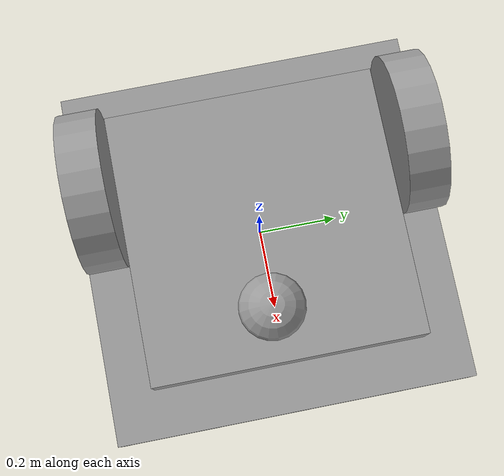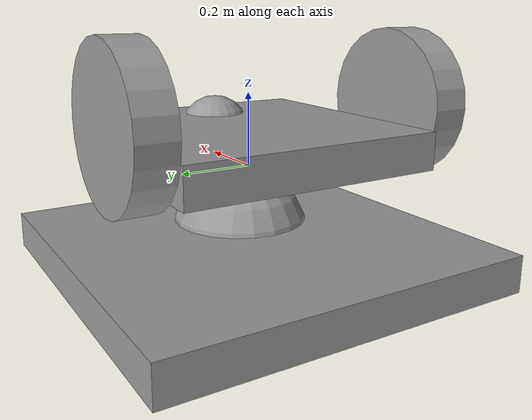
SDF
<?xml version='1.0'?>
<sdf version='1.6'>
  <model name='my2WRobot'>
    <link name='link_0'>
      <pose frame=''>-0.027455 0.014407 -0.233333 0 -0 0</pose>
      <inertial>
        <mass>1</mass>
        <inertia>
          <ixx>0.166667</ixx>
          <ixy>0</ixy>
          <ixz>0</ixz>
          <iyy>0.166667</iyy>
          <iyz>0</iyz>
          <izz>0.166667</izz>
        </inertia>
        <pose frame=''>0 0 0 0 -0 0</pose>
      </inertial>
      <gravity>1</gravity>
      <self_collide>0</self_collide>
      <kinematic>0</kinematic>
      <visual name='visual'>
        <pose frame=''>0 0 0 0 -0 0</pose>
        <geometry>
          <box>
            <size>1 1 0.1</size>
          </box>
        </geometry>
        <material>
          <lighting>1</lighting>
          <script>
            <uri>file://media/materials/scripts/gazebo.material</uri>
            <name>Gazebo/Grey</name>
          </script>
          <shader type='pixel'>
            <normal_map>__default__</normal_map>
          </shader>
          <ambient>0.3 0.3 0.3 1</ambient>
          <diffuse>0.7 0.7 0.7 1</diffuse>
          <specular>0.01 0.01 0.01 1</specular>
          <emissive>0 0 0 1</emissive>
        </material>
        <transparency>0</transparency>
        <cast_shadows>1</cast_shadows>
      </visual>
      <collision name='collision'>
        <laser_retro>0</laser_retro>
        <max_contacts>10</max_contacts>
        <pose frame=''>0 0 0 0 -0 0</pose>
        <geometry>
          <box>
            <size>1 1 0.1</size>
          </box>
        </geometry>
        <surface>
          <friction>
            <ode>
              <mu>1</mu>
              <mu2>1</mu2>
              <fdir1>0 0 0</fdir1>
              <slip1>0</slip1>
              <slip2>0</slip2>
            </ode>
            <torsional>
              <coefficient>1</coefficient>
              <patch_radius>0</patch_radius>
              <surface_radius>0</surface_radius>
              <use_patch_radius>1</use_patch_radius>
              <ode>
                <slip>0</slip>
              </ode>
            </torsional>
          </friction>
          <bounce>
            <restitution_coefficient>0</restitution_coefficient>
            <threshold>1e+06</threshold>
          </bounce>
          <contact>
            <collide_without_contact>0</collide_without_contact>
            <collide_without_contact_bitmask>1</collide_without_contact_bitmask>
            <collide_bitmask>1</collide_bitmask>
            <ode>
              <soft_cfm>0</soft_cfm>
              <soft_erp>0.2</soft_erp>
              <kp>1e+13</kp>
              <kd>1</kd>
              <max_vel>0.01</max_vel>
              <min_depth>0</min_depth>
            </ode>
            <bullet>
              <split_impulse>1</split_impulse>
              <split_impulse_penetration_threshold>-0.01</split_impulse_penetration_threshold>
              <soft_cfm>0</soft_cfm>
              <soft_erp>0.2</soft_erp>
              <kp>1e+13</kp>
              <kd>1</kd>
            </bullet>
          </contact>
        </surface>
      </collision>
    </link>
    <link name='link_1'>
      <pose frame=''>0.108755 -0.034674 -0.233333 0 -0 0</pose>
      <inertial>
        <mass>1</mass>
        <inertia>
          <ixx>0.1</ixx>
          <ixy>0</ixy>
          <ixz>0</ixz>
          <iyy>0.1</iyy>
          <iyz>0</iyz>
          <izz>0.1</izz>
        </inertia>
        <pose frame=''>0 0 0 0 -0 0</pose>
      </inertial>
      <gravity>1</gravity>
      <self_collide>0</self_collide>
      <kinematic>0</kinematic>
      <visual name='visual'>
        <pose frame=''>0 0 0 0 -0 0</pose>
        <geometry>
          <sphere>
            <radius>0.2</radius>
          </sphere>
        </geometry>
        <material>
          <lighting>1</lighting>
          <script>
            <uri>file://media/materials/scripts/gazebo.material</uri>
            <name>Gazebo/Grey</name>
          </script>
          <shader type='pixel'>
            <normal_map>__default__</normal_map>
          </shader>
          <ambient>0.3 0.3 0.3 1</ambient>
          <diffuse>0.7 0.7 0.7 1</diffuse>
          <specular>0.01 0.01 0.01 1</specular>
          <emissive>0 0 0 1</emissive>
        </material>
        <transparency>0</transparency>
        <cast_shadows>1</cast_shadows>
      </visual>
      <collision name='collision'>
        <laser_retro>0</laser_retro>
        <max_contacts>10</max_contacts>
        <pose frame=''>0 0 0 0 -0 0</pose>
        <geometry>
          <sphere>
            <radius>0.2</radius>
          </sphere>
        </geometry>
        <surface>
          <friction>
            <ode>
              <mu>1</mu>
              <mu2>1</mu2>
              <fdir1>0 0 0</fdir1>
              <slip1>0</slip1>
              <slip2>0</slip2>
            </ode>
            <torsional>
              <coefficient>1</coefficient>
              <patch_radius>0</patch_radius>
              <surface_radius>0</surface_radius>
              <use_patch_radius>1</use_patch_radius>
              <ode>
                <slip>0</slip>
              </ode>
            </torsional>
          </friction>
          <bounce>
            <restitution_coefficient>0</restitution_coefficient>
            <threshold>1e+06</threshold>
          </bounce>
          <contact>
            <collide_without_contact>0</collide_without_contact>
            <collide_without_contact_bitmask>1</collide_without_contact_bitmask>
            <collide_bitmask>1</collide_bitmask>
            <ode>
              <soft_cfm>0</soft_cfm>
              <soft_erp>0.2</soft_erp>
              <kp>1e+13</kp>
              <kd>1</kd>
              <max_vel>0.01</max_vel>
              <min_depth>0</min_depth>
            </ode>
            <bullet>
              <split_impulse>1</split_impulse>
              <split_impulse_penetration_threshold>-0.01</split_impulse_penetration_threshold>
              <soft_cfm>0</soft_cfm>
              <soft_erp>0.2</soft_erp>
              <kp>1e+13</kp>
              <kd>1</kd>
            </bullet>
          </contact>
        </surface>
      </collision>
    </link>
    <link name='link_2'>
      <pose frame=''>-0.147825 -0.389952 0.166667 1.5707 -0 0</pose>
      <inertial>
        <mass>1</mass>
        <inertia>
          <ixx>0.145833</ixx>
          <ixy>0</ixy>
          <ixz>0</ixz>
          <iyy>0.145833</iyy>
          <iyz>0</iyz>
          <izz>0.125</izz>
        </inertia>
        <pose frame=''>0 0 0.2 1.5707 -0 0</pose>
      </inertial>
      <gravity>1</gravity>
      <self_collide>0</self_collide>
      <kinematic>0</kinematic>
      <visual name='visual'>
        <pose frame=''>0 0 0 0 -0 0</pose>
        <geometry>
          <cylinder>
            <radius>0.2</radius>
            <length>0.1</length>
          </cylinder>
        </geometry>
        <material>
          <lighting>1</lighting>
          <script>
            <uri>file://media/materials/scripts/gazebo.material</uri>
            <name>Gazebo/Grey</name>
          </script>
          <shader type='pixel'>
            <normal_map>__default__</normal_map>
          </shader>
          <ambient>0.3 0.3 0.3 1</ambient>
          <diffuse>0.7 0.7 0.7 1</diffuse>
          <specular>0.01 0.01 0.01 1</specular>
          <emissive>0 0 0 1</emissive>
        </material>
        <transparency>0</transparency>
        <cast_shadows>1</cast_shadows>
      </visual>
      <collision name='collision'>
        <laser_retro>0</laser_retro>
        <max_contacts>10</max_contacts>
        <pose frame=''>0 0 0 0 -0 0</pose>
        <geometry>
          <cylinder>
            <radius>0.2</radius>
            <length>0.1</length>
          </cylinder>
        </geometry>
        <surface>
          <friction>
            <ode>
              <mu>1</mu>
              <mu2>1</mu2>
              <fdir1>0 0 0</fdir1>
              <slip1>0</slip1>
              <slip2>0</slip2>
            </ode>
            <torsional>
              <coefficient>1</coefficient>
              <patch_radius>0</patch_radius>
              <surface_radius>0</surface_radius>
              <use_patch_radius>1</use_patch_radius>
              <ode>
                <slip>0</slip>
              </ode>
            </torsional>
          </friction>
          <bounce>
            <restitution_coefficient>0</restitution_coefficient>
            <threshold>1e+06</threshold>
          </bounce>
          <contact>
            <collide_without_contact>0</collide_without_contact>
            <collide_without_contact_bitmask>1</collide_without_contact_bitmask>
            <collide_bitmask>1</collide_bitmask>
            <ode>
              <soft_cfm>0</soft_cfm>
              <soft_erp>0.2</soft_erp>
              <kp>1e+13</kp>
              <kd>1</kd>
              <max_vel>0.01</max_vel>
              <min_depth>0</min_depth>
            </ode>
            <bullet>
              <split_impulse>1</split_impulse>
              <split_impulse_penetration_threshold>-0.01</split_impulse_penetration_threshold>
              <soft_cfm>0</soft_cfm>
              <soft_erp>0.2</soft_erp>
              <kp>1e+13</kp>
              <kd>1</kd>
            </bullet>
          </contact>
        </surface>
      </collision>
    </link>
    <link name='link_2_clone'>
      <pose frame=''>-0.147825 0.410087 0.166667 1.5707 -0 0</pose>
      <inertial>
        <mass>1</mass>
        <inertia>
          <ixx>0.145833</ixx>
          <ixy>0</ixy>
          <ixz>0</ixz>
          <iyy>0.145833</iyy>
          <iyz>0</iyz>
          <izz>0.125</izz>
        </inertia>
        <pose frame=''>0 0 0.2 1.5707 -0 0</pose>
      </inertial>
      <self_collide>0</self_collide>
      <kinematic>0</kinematic>
      <gravity>1</gravity>
      <visual name='visual'>
        <pose frame=''>0 0 0 0 -0 0</pose>
        <geometry>
          <cylinder>
            <radius>0.2</radius>
            <length>0.1</length>
          </cylinder>
        </geometry>
        <material>
          <lighting>1</lighting>
          <script>
            <uri>file://media/materials/scripts/gazebo.material</uri>
            <name>Gazebo/Grey</name>
          </script>
          <shader type='pixel'>
            <normal_map>__default__</normal_map>
          </shader>
          <ambient>0.3 0.3 0.3 1</ambient>
          <diffuse>0.7 0.7 0.7 1</diffuse>
          <specular>0.01 0.01 0.01 1</specular>
          <emissive>0 0 0 1</emissive>
        </material>
        <transparency>0</transparency>
        <cast_shadows>1</cast_shadows>
      </visual>
      <collision name='collision'>
        <laser_retro>0</laser_retro>
        <max_contacts>10</max_contacts>
        <pose frame=''>0 0 0 0 -0 0</pose>
        <geometry>
          <cylinder>
            <radius>0.2</radius>
            <length>0.1</length>
          </cylinder>
        </geometry>
        <surface>
          <friction>
            <ode>
              <mu>1</mu>
              <mu2>1</mu2>
              <fdir1>0 0 0</fdir1>
              <slip1>0</slip1>
              <slip2>0</slip2>
            </ode>
            <torsional>
              <coefficient>1</coefficient>
              <patch_radius>0</patch_radius>
              <surface_radius>0</surface_radius>
              <use_patch_radius>1</use_patch_radius>
              <ode>
                <slip>0</slip>
              </ode>
            </torsional>
          </friction>
          <bounce>
            <restitution_coefficient>0</restitution_coefficient>
            <threshold>1e+06</threshold>
          </bounce>
          <contact>
            <collide_without_contact>0</collide_without_contact>
            <collide_without_contact_bitmask>1</collide_without_contact_bitmask>
            <collide_bitmask>1</collide_bitmask>
            <ode>
              <soft_cfm>0</soft_cfm>
              <soft_erp>0.2</soft_erp>
              <kp>1e+13</kp>
              <kd>1</kd>
              <max_vel>0.01</max_vel>
              <min_depth>0</min_depth>
            </ode>
            <bullet>
              <split_impulse>1</split_impulse>
              <split_impulse_penetration_threshold>-0.01</split_impulse_penetration_threshold>
              <soft_cfm>0</soft_cfm>
              <soft_erp>0.2</soft_erp>
              <kp>1e+13</kp>
              <kd>1</kd>
            </bullet>
          </contact>
        </surface>
      </collision>
    </link>
    <link name='link_4'>
      <pose frame=''>0.002175 0.010067 0.066667 0 -0 0</pose>
      <inertial>
        <mass>1</mass>
        <inertia>
          <ixx>0.166667</ixx>
          <ixy>0</ixy>
          <ixz>0</ixz>
          <iyy>0.166667</iyy>
          <iyz>0</iyz>
          <izz>0.166667</izz>
        </inertia>
        <pose frame=''>0 0 0 0 -0 0</pose>
      </inertial>
      <gravity>1</gravity>
      <self_collide>0</self_collide>
      <kinematic>0</kinematic>
      <visual name='visual'>
        <pose frame=''>0 0 0 0 -0 0</pose>
        <geometry>
          <box>
            <size>0.7 0.7 0.1</size>
          </box>
        </geometry>
        <material>
          <lighting>1</lighting>
          <script>
            <uri>file://media/materials/scripts/gazebo.material</uri>
            <name>Gazebo/Grey</name>
          </script>
          <shader type='pixel'>
            <normal_map>__default__</normal_map>
          </shader>
          <ambient>0.3 0.3 0.3 1</ambient>
          <diffuse>0.7 0.7 0.7 1</diffuse>
          <specular>0.01 0.01 0.01 1</specular>
          <emissive>0 0 0 1</emissive>
        </material>
        <transparency>0</transparency>
        <cast_shadows>1</cast_shadows>
      </visual>
      <collision name='collision'>
        <laser_retro>0</laser_retro>
        <max_contacts>10</max_contacts>
        <pose frame=''>0 0 0 0 -0 0</pose>
        <geometry>
          <box>
            <size>0.7 0.7 0.1</size>
          </box>
        </geometry>
        <surface>
          <friction>
            <ode>
              <mu>1</mu>
              <mu2>1</mu2>
              <fdir1>0 0 0</fdir1>
              <slip1>0</slip1>
              <slip2>0</slip2>
            </ode>
            <torsional>
              <coefficient>1</coefficient>
              <patch_radius>0</patch_radius>
              <surface_radius>0</surface_radius>
              <use_patch_radius>1</use_patch_radius>
              <ode>
                <slip>0</slip>
              </ode>
            </torsional>
          </friction>
          <bounce>
            <restitution_coefficient>0</restitution_coefficient>
            <threshold>1e+06</threshold>
          </bounce>
          <contact>
            <collide_without_contact>0</collide_without_contact>
            <collide_without_contact_bitmask>1</collide_without_contact_bitmask>
            <collide_bitmask>1</collide_bitmask>
            <ode>
              <soft_cfm>0</soft_cfm>
              <soft_erp>0.2</soft_erp>
              <kp>1e+13</kp>
              <kd>1</kd>
              <max_vel>0.01</max_vel>
              <min_depth>0</min_depth>
            </ode>
            <bullet>
              <split_impulse>1</split_impulse>
              <split_impulse_penetration_threshold>-0.01</split_impulse_penetration_threshold>
              <soft_cfm>0</soft_cfm>
              <soft_erp>0.2</soft_erp>
              <kp>1e+13</kp>
              <kd>1</kd>
            </bullet>
          </contact>
        </surface>
      </collision>
    </link>
    <link name='link_5'>
      <pose frame=''>0.212175 -0.009933 0.066667 0 -0 0</pose>
      <inertial>
        <mass>1</mass>
        <inertia>
          <ixx>0.1</ixx>
          <ixy>0</ixy>
          <ixz>0</ixz>
          <iyy>0.1</iyy>
          <iyz>0</iyz>
          <izz>0.1</izz>
        </inertia>
        <pose frame=''>0 0 0 0 -0 0</pose>
      </inertial>
      <gravity>1</gravity>
      <self_collide>0</self_collide>
      <kinematic>0</kinematic>
      <visual name='visual'>
        <pose frame=''>0 0 0 0 -0 0</pose>
        <geometry>
          <sphere>
            <radius>0.1</radius>
          </sphere>
        </geometry>
        <material>
          <lighting>1</lighting>
          <script>
            <uri>file://media/materials/scripts/gazebo.material</uri>
            <name>Gazebo/Grey</name>
          </script>
          <shader type='pixel'>
            <normal_map>__default__</normal_map>
          </shader>
          <ambient>0.3 0.3 0.3 1</ambient>
          <diffuse>0.7 0.7 0.7 1</diffuse>
          <specular>0.01 0.01 0.01 1</specular>
          <emissive>0 0 0 1</emissive>
        </material>
        <transparency>0</transparency>
        <cast_shadows>1</cast_shadows>
      </visual>
      <collision name='collision'>
        <laser_retro>0</laser_retro>
        <max_contacts>10</max_contacts>
        <pose frame=''>0 0 0 0 -0 0</pose>
        <geometry>
          <sphere>
            <radius>0.1</radius>
          </sphere>
        </geometry>
        <surface>
          <friction>
            <ode>
              <mu>1</mu>
              <mu2>1</mu2>
              <fdir1>0 0 0</fdir1>
              <slip1>0</slip1>
              <slip2>0</slip2>
            </ode>
            <torsional>
              <coefficient>1</coefficient>
              <patch_radius>0</patch_radius>
              <surface_radius>0</surface_radius>
              <use_patch_radius>1</use_patch_radius>
              <ode>
                <slip>0</slip>
              </ode>
            </torsional>
          </friction>
          <bounce>
            <restitution_coefficient>0</restitution_coefficient>
            <threshold>1e+06</threshold>
          </bounce>
          <contact>
            <collide_without_contact>0</collide_without_contact>
            <collide_without_contact_bitmask>1</collide_without_contact_bitmask>
            <collide_bitmask>1</collide_bitmask>
            <ode>
              <soft_cfm>0</soft_cfm>
              <soft_erp>0.2</soft_erp>
              <kp>1e+13</kp>
              <kd>1</kd>
              <max_vel>0.01</max_vel>
              <min_depth>0</min_depth>
            </ode>
            <bullet>
              <split_impulse>1</split_impulse>
              <split_impulse_penetration_threshold>-0.01</split_impulse_penetration_threshold>
              <soft_cfm>0</soft_cfm>
              <soft_erp>0.2</soft_erp>
              <kp>1e+13</kp>
              <kd>1</kd>
            </bullet>
          </contact>
        </surface>
      </collision>
    </link>
    <joint name='link_4_JOINT_1' type='revolute'>
      <parent>link_4</parent>
      <child>link_5</child>
      <pose frame=''>0 0 0 0 -0 0</pose>
      <axis>
        <xyz>0 0 1</xyz>
        <use_parent_model_frame>0</use_parent_model_frame>
        <limit>
          <lower>-1.79769e+308</lower>
          <upper>1.79769e+308</upper>
          <effort>-1</effort>
          <velocity>-1</velocity>
        </limit>
        <dynamics>
          <spring_reference>0</spring_reference>
          <spring_stiffness>0</spring_stiffness>
          <damping>0</damping>
        </dynamics>
      </axis>
      <physics>
        <ode>
          <limit>
            <cfm>0</cfm>
            <erp>0.2</erp>
          </limit>
          <suspension>
            <cfm>0</cfm>
            <erp>0.2</erp>
          </suspension>
        </ode>
      </physics>
    </joint>
    <joint name='link_4_JOINT_2' type='revolute'>
      <parent>link_4</parent>
      <child>link_2</child>
      <pose frame=''>0 0 0 0 -0 0</pose>
      <axis>
        <xyz>0 0 1</xyz>
        <use_parent_model_frame>0</use_parent_model_frame>
        <limit>
          <lower>-1.79769e+308</lower>
          <upper>1.79769e+308</upper>
          <effort>-1</effort>
          <velocity>-1</velocity>
        </limit>
        <dynamics>
          <spring_reference>0</spring_reference>
          <spring_stiffness>0</spring_stiffness>
          <damping>0</damping>
        </dynamics>
      </axis>
      <physics>
        <ode>
          <limit>
            <cfm>0</cfm>
            <erp>0.2</erp>
          </limit>
          <suspension>
            <cfm>0</cfm>
            <erp>0.2</erp>
          </suspension>
        </ode>
      </physics>
    </joint>
    <joint name='link_4_JOINT_3' type='revolute'>
      <parent>link_4</parent>
      <child>link_2_clone</child>
      <pose frame=''>0 0 0 0 -0 0</pose>
      <axis>
        <xyz>0 0 1</xyz>
        <use_parent_model_frame>0</use_parent_model_frame>
        <limit>
          <lower>-1.79769e+308</lower>
          <upper>1.79769e+308</upper>
          <effort>-1</effort>
          <velocity>-1</velocity>
        </limit>
        <dynamics>
          <spring_reference>0</spring_reference>
          <spring_stiffness>0</spring_stiffness>
          <damping>0</damping>
        </dynamics>
      </axis>
      <physics>
        <ode>
          <limit>
            <cfm>0</cfm>
            <erp>0.2</erp>
          </limit>
          <suspension>
            <cfm>0</cfm>
            <erp>0.2</erp>
          </suspension>
        </ode>
      </physics>
    </joint>
    <static>0</static>
    <allow_auto_disable>1</allow_auto_disable>
  </model>
</sdf>
